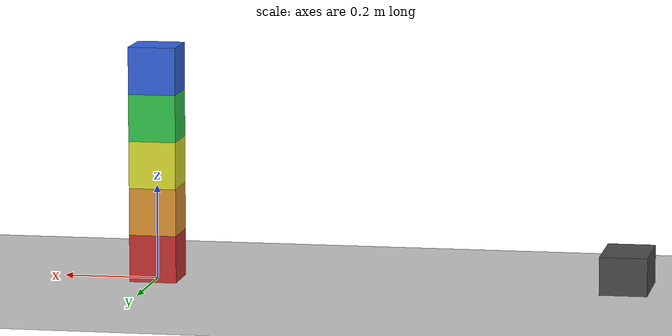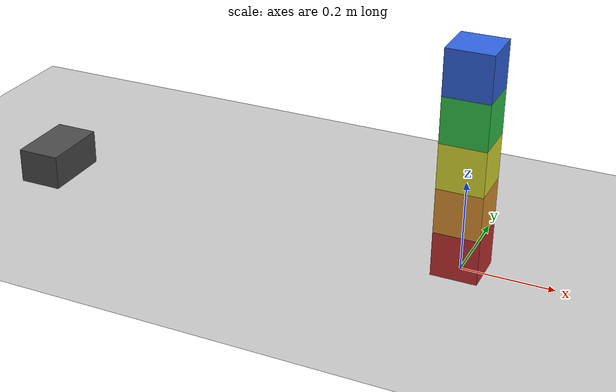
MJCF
<mujoco model="five_block_stack_topple">
  <option timestep="0.002" gravity="0 0 -9.81"/>

  <worldbody>
    <light name="sun" pos="0 0 3" dir="0 0 -1" diffuse="0.8 0.8 0.8"/>
    <geom name="floor" type="plane" size="3 3 0.1" pos="0 0 0" friction="0.8 0.005 0.0001" rgba="0.8 0.8 0.8 1"/>

    <body name="block1" pos="0 0 0.05">
      <freejoint name="block1_free"/>
      <geom name="block1_geom" type="box" size="0.05 0.05 0.05" mass="0.5" friction="0.8 0.005 0.0001" rgba="0.8 0.2 0.2 1"/>
    </body>
    <body name="block2" pos="0 0 0.15">
      <freejoint name="block2_free"/>
      <geom name="block2_geom" type="box" size="0.05 0.05 0.05" mass="0.5" friction="0.8 0.005 0.0001" rgba="0.9 0.6 0.2 1"/>
    </body>
    <body name="block3" pos="0 0 0.25">
      <freejoint name="block3_free"/>
      <geom name="block3_geom" type="box" size="0.05 0.05 0.05" mass="0.5" friction="0.8 0.005 0.0001" rgba="0.9 0.9 0.2 1"/>
    </body>
    <body name="block4" pos="0 0 0.35">
      <freejoint name="block4_free"/>
      <geom name="block4_geom" type="box" size="0.05 0.05 0.05" mass="0.5" friction="0.8 0.005 0.0001" rgba="0.2 0.8 0.3 1"/>
    </body>
    <body name="block5" pos="0 0 0.45">
      <freejoint name="block5_free"/>
      <geom name="block5_geom" type="box" size="0.05 0.05 0.05" mass="0.5" friction="0.8 0.005 0.0001" rgba="0.2 0.4 0.9 1"/>
    </body>

    <body name="pusher" pos="-1.0 0 0.05">
      <joint name="pusher_slide" type="slide" axis="1 0 0" limited="true" range="0 1.05" damping="0"/>
      <geom name="pusher_geom" type="box" size="0.05 0.08 0.04" mass="3" friction="0.8 0.005 0.0001" rgba="0.3 0.3 0.3 1"/>
    </body>
  </worldbody>

  <keyframe>
    <key name="start" qpos="0 0 0.05 1 0 0 0  0 0 0.15 1 0 0 0  0 0 0.25 1 0 0 0  0 0 0.35 1 0 0 0  0 0 0.45 1 0 0 0  0" qvel="0 0 0 0 0 0  0 0 0 0 0 0  0 0 0 0 0 0  0 0 0 0 0 0  0 0 0 0 0 0  1.5"/>
  </keyframe>
</mujoco>
